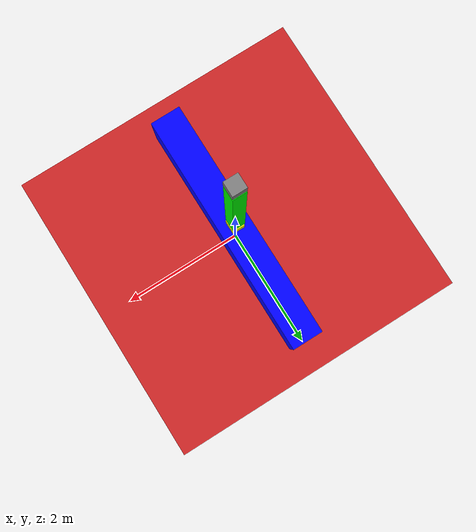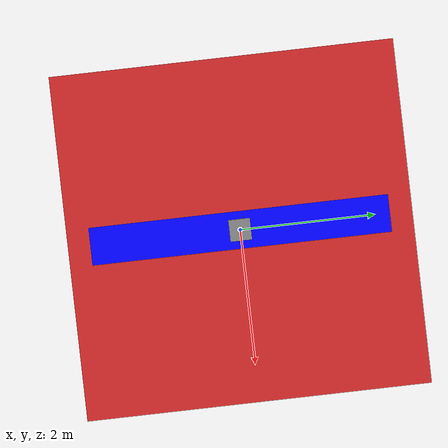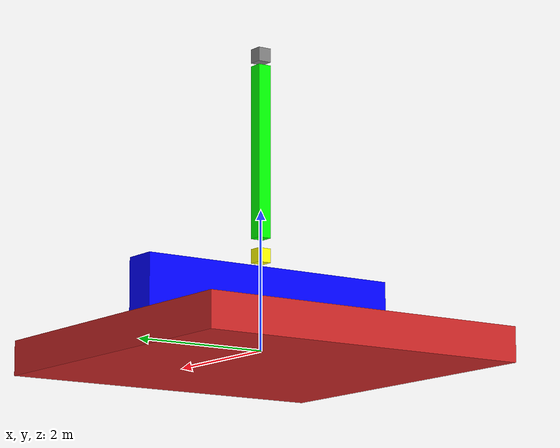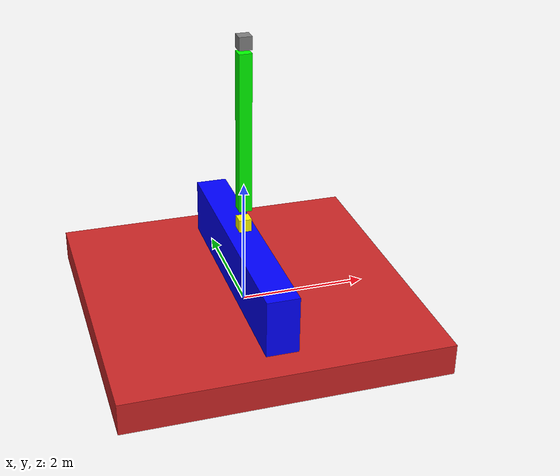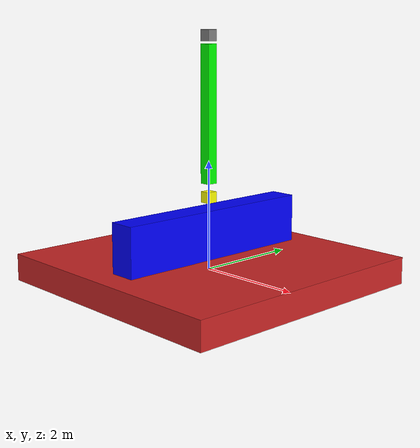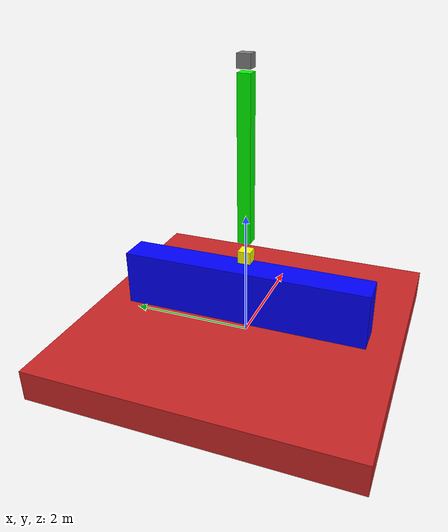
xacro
<?xml version="1.0" ?>

<robot xmlns:xacro="http://www.ros.org/wiki/xacro"
       xmlns:controller="http://playerstage.sourceforge.net/gazebo/xmlschema/#controller"
       xmlns:interface="http://playerstage.sourceforge.net/gazebo/xmlschema/#interface"
    name="inverse_pendulum_model">

    <!-- includes -->
    <xacro:include filename="$(find inverse_pendulum_model)/urdf/macros.xacro" />
    <xacro:include filename="$(find inverse_pendulum_model)/urdf/properties.xacro" />

    <!-- colors -->
    <gazebo reference="foot">
        <material>Gazebo/Red</material>
    </gazebo>

    <gazebo reference="foundation">
        <material>Gazebo/Blue</material>
    </gazebo>

    <gazebo reference="connector">
        <material>Gazebo/Yellow</material>
    </gazebo>

    <gazebo reference="arm">
        <material>Gazebo/Green</material>
    </gazebo>

    <!-- ros_control plugin -->
    <gazebo>
        <plugin name="gazebo_ros_control" filename="libgazebo_ros_control.so">
            <robotNamespace>/inverse_pendulum_control</robotNamespace>
            <legacyModeNS>true</legacyModeNS>
        </plugin>
    </gazebo>

    <link name="root">
        <visual>
            <geometry>
                <!-- x-red, y-green, z-blue -->
                <box size="0.1 0.1 0.1" />
            </geometry>
            <origin rpy="0 0 0" xyz="0 0 0" />
        </visual>
    </link>

    <joint name="root_to_foot" type="fixed">
        <parent link="root" />
        <child link="foot" />
        <origin rpy="0 0 0" xyz="0 0 0" />
    </joint>

    <link name="foot">
        <visual>
            <geometry>
                <!-- x-red, y-green, z-blue -->
                <box size="${foot_width} ${foot_depth} ${foot_height}" />
            </geometry>
            <origin rpy="0 0 0" xyz="0 0 0" />
        </visual>
        <collision>
            <geometry>
                <box size="${foot_width} ${foot_depth} ${foot_height}" />
            </geometry>
            <origin rpy="0 0 0" xyz="0 0 0" />
        </collision>
        <xacro:inertial_matrix
            mass="${foot_mass}"
            x_length="${foot_width}"
            y_length="${foot_depth}"
            z_length="${foot_height}"
        />
    </link>

    <joint name="foot_to_foundation" type="fixed">
        <parent link="foot" />
        <child link="foundation" />
        <origin rpy="0 0 0" xyz="0 0 0.15" />
    </joint>

    <link name="foundation">
        <visual>
            <geometry>
                <!-- x-red, y-green, z-blue -->
                <box size="${foundation_width}
                           ${foundation_depth}
                           ${foundation_height}" />
            </geometry>
            <origin rpy="0 0 0" xyz="0 0 ${foot_height}" />
            <material name="blue">
                <color rgba="0 0 1 1" />
            </material>
        </visual>
        <collision>
            <geometry>
                <box size="${foundation_width}
                           ${foundation_depth}
                           ${foundation_height}" />
            </geometry>
            <origin rpy="0 0 0" xyz="0 0 ${foot_height}" />
        </collision>
        <xacro:inertial_matrix
            mass="${foundation_mass}"
            x_length="${foundation_width}"
            y_length="${foundation_depth}"
            z_length="${foundation_height}"
            />
    </link>

    <joint name="foundation_to_connector" type="prismatic">
        <parent link="foundation" />
        <child link="connector" />
        <origin rpy="0 0 0" xyz="0 0 1.2" />
        <limit upper="1.80" lower="-1.80" effort="100" velocity="100" />
        <axis xyz="0 1 0" />
    </joint>

    <link name="connector">
        <visual>
            <geometry>
                <box size="${connector_width}
                           ${connector_depth}
                           ${connector_height}" />
            </geometry>
            <origin rpy="0 0 0" xyz="0 0 0" />
            <material name="yellow">
                <color rgba="1 1 0 1" />
            </material>
        </visual>
        <collision>
            <geometry>
                <box size="${connector_width}
                           ${connector_depth}
                           ${connector_height}" />
            </geometry>
            <origin rpy="0 0 0" xyz="0 0 0" />
        </collision>
        <xacro:inertial_matrix
            mass="${connector_mass}"
            x_length="${connector_width}"
            y_length="${connector_depth}"
            z_length="${connector_height}" />
    </link>

    <joint name="connector_to_arm" type="revolute">
        <parent link="connector" />
        <child link="arm" />
        <origin rpy="0 0 0" xyz="0 0 0.2" />
        <limit upper="${3.14/2}" lower="${-3.14/2}"
            effort="100" velocity="100" />
        <axis xyz="1 0 0" />
        <!-- Determine how these are calculated! -->
        <dynamics damping="0.5" friction="0.2" />
    </joint>

    <link name="arm">
        <visual>
            <geometry>
                <box size="${arm_width}
                           ${arm_depth}
                           ${arm_height}" />
            </geometry>
            <origin rpy="0 0 0" xyz="0 0 1.3" />
            <material name="green">
                <color rgba="0 1 0 1" />
            </material>
        </visual>
        <collision>
            <geometry>
                <box size="${arm_width}
                           ${arm_depth}
                           ${arm_height}" />
            </geometry>
            <origin rpy="0 0 0" xyz="0 0 1.3" />
        </collision>
        <xacro:inertial_matrix2
            mass="${arm_mass}"
            x_length="${arm_width}"
            y_length="${arm_depth}"
            z_length="${arm_height}" />
    </link>

    <joint name="arm_to_imu" type="fixed">
        <parent link="arm" />
        <child link="imu_link" />
        <origin rpy="0 0 0" xyz="0 0 2.7" />
        <axis xyz="0 0 0" rpy="0 0 0" />
    </joint>

    <link name="imu_link">
        <visual>
            <geometry>
                <box size="0.2 0.2 0.2" />
            </geometry>
            <origin rpy="0 0 0" xyz="0 0 0" />
            <material name="gray">
                <color rgba="0.5 0.5 0.5 1" />
            </material>
        </visual>
    </link>

    <!-- transmissions -->
    <xacro:transmission_block joint_name="foundation_to_connector" />
    <xacro:transmission_block joint_name="connector_to_arm" />

    <gazebo reference="imu_link">
        <gravity>true</gravity>
        <sensor name="imu_sensor" type="imu">
            <alwaysOn>true</alwaysOn>
            <update_rate>100</update_rate>
            <visualize>true</visualize>
            <topic>__default_topic__</topic>
            <plugin filename="libgazebo_ros_imu_sensor.so" name="imu_plugin">
                <topicName>imu</topicName>
                <bodyName>imu_link</bodyName>
                <updateRateHZ>10.0</updateRateHZ>
                <gaussianNoise>0.0</gaussianNoise>
                <xyzOffset>0 0 0</xyzOffset>
                <rpyOffset>0 0 0</rpyOffset>
                <frameName>imu_link</frameName>
                <initialOrientationAsReference>false</initialOrientationAsReference>
            </plugin>
            <pose>0 0 0 0 0 0</pose>
        </sensor>
    </gazebo>

</robot>

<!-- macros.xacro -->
<robot xmlns:xacro="http://www.ros.org/wiki/xacro"
    name="inverse_pendulum">

    <xacro:macro name="transmission_block" params="joint_name">
        <transmission name="tran1">
            <type>transmission_interface/SimpleTransmission</type>
            <joint name="${joint_name}">
                <!-- Must append hardware_interface to PositionJointInterface
                     -->
                <!-- Must use EffortJointInterface or VelocityJointInterface
                     -->
                <hardwareInterface>hardware_interface/PositionJointInterface</hardwareInterface>
            </joint>
            <actuator name="motor1">
                <hardwareInterface>hardware_interface/PositionJointInterface</hardwareInterface>
                <mechanicalReduction>1</mechanicalReduction>
            </actuator>
        </transmission>
    </xacro:macro>

    <!-- https://en.wikipedia.org/wiki/List_of_moments_of_inertia -->
    <xacro:macro name="inertial_matrix" params="mass x_length y_length z_length">
      <inertial>
        <mass value="${mass}" />
        <origin xyz="0 0 0" />
        <inertia ixx="${(1/12) * mass * (y_length*y_length + z_length*z_length)}" ixy="0.0" ixz="0.0"
                 iyy="${(1/12) * mass * (x_length*x_length + z_length*z_length)}" iyz="0.0"
                 izz="${(1/12) * mass * (x_length*x_length + y_length*y_length)}" />
      </inertial>
    </xacro:macro>

    <xacro:macro name="inertial_matrix2" params="mass x_length y_length z_length">
      <inertial>
        <mass value="${mass}" />
        <origin xyz="0 0 1.3" />
        <inertia ixx="${(1/12) * mass * (y_length*y_length + z_length*z_length)}" ixy="0.0" ixz="0.0"
                 iyy="${(1/12) * mass * (x_length*x_length + z_length*z_length)}" iyz="0.0"
                 izz="${(1/12) * mass * (x_length*x_length + y_length*y_length)}" />
      </inertial>
    </xacro:macro>

</robot>

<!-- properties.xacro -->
<robot xmlns:xacro="http://www.ros.org/wiki/xacro"
       xmlns:controller="http://playerstage.sourceforge.net/gazebo/xmlschema/#controller"
    name="inverse_pendulum">

    <!-- object properties -->

    <!-- foot -->
    <xacro:property name="foot_width" value="5.0" />
    <xacro:property name="foot_depth" value="5.0" />
    <xacro:property name="foot_height" value="0.5" />
    <xacro:property name="foot_mass" value="1000.0" />

    <!-- foundation -->
    <!-- x-red, y-green, z-blue -->
    <xacro:property name="foundation_width" value="0.5" />
    <xacro:property name="foundation_depth" value="4.0" />
    <xacro:property name="foundation_height" value="1.0" />
    <xacro:property name="foundation_mass" value="5.0" />

    <!-- connector -->
    <xacro:property name="connector_width" value="0.2" />
    <xacro:property name="connector_depth" value="0.2" />
    <xacro:property name="connector_height" value="0.2" />
    <xacro:property name="connector_mass" value="0.5" />

    <!-- arm -->
    <xacro:property name="arm_width" value="0.2" />
    <xacro:property name="arm_depth" value="0.2" />
    <xacro:property name="arm_height" value="2.5" />
    <xacro:property name="arm_mass" value="1.0" />
</robot>
